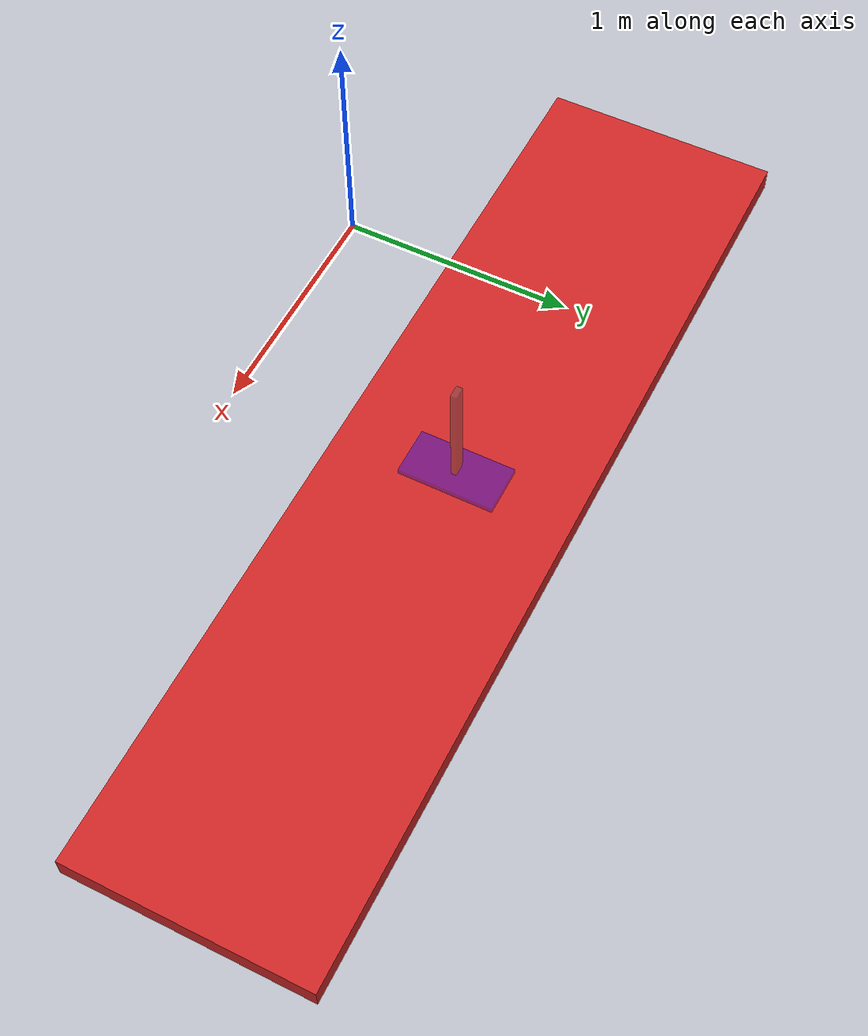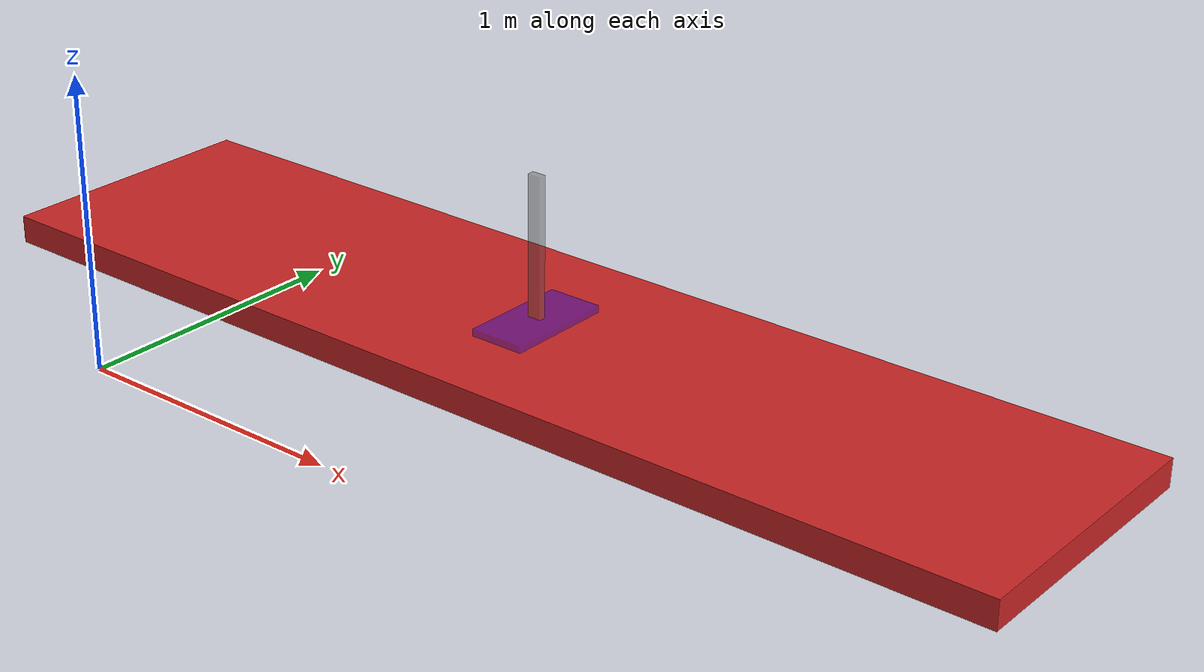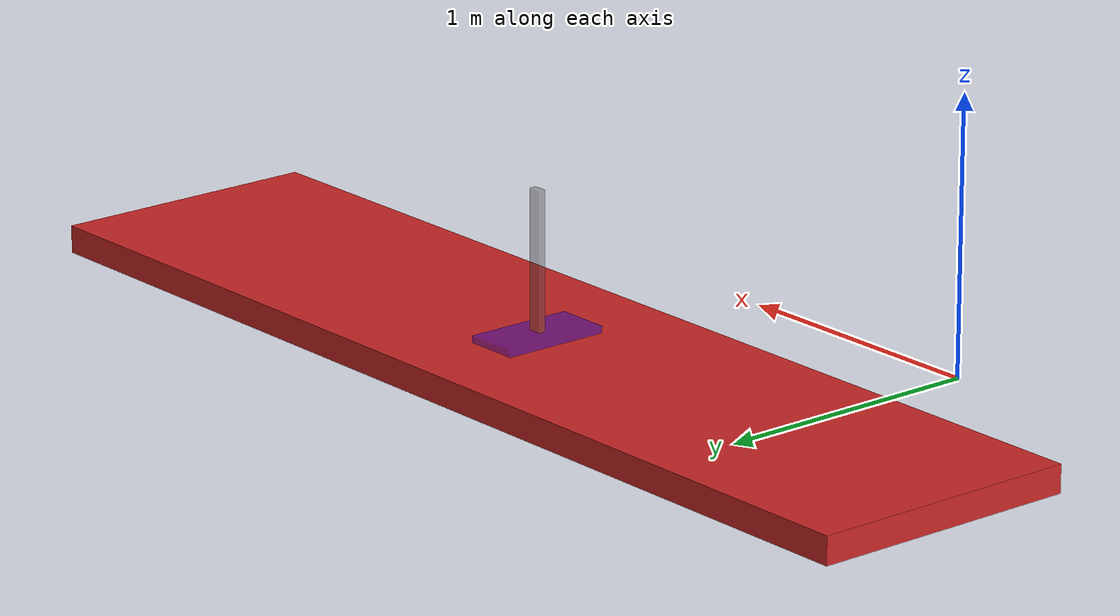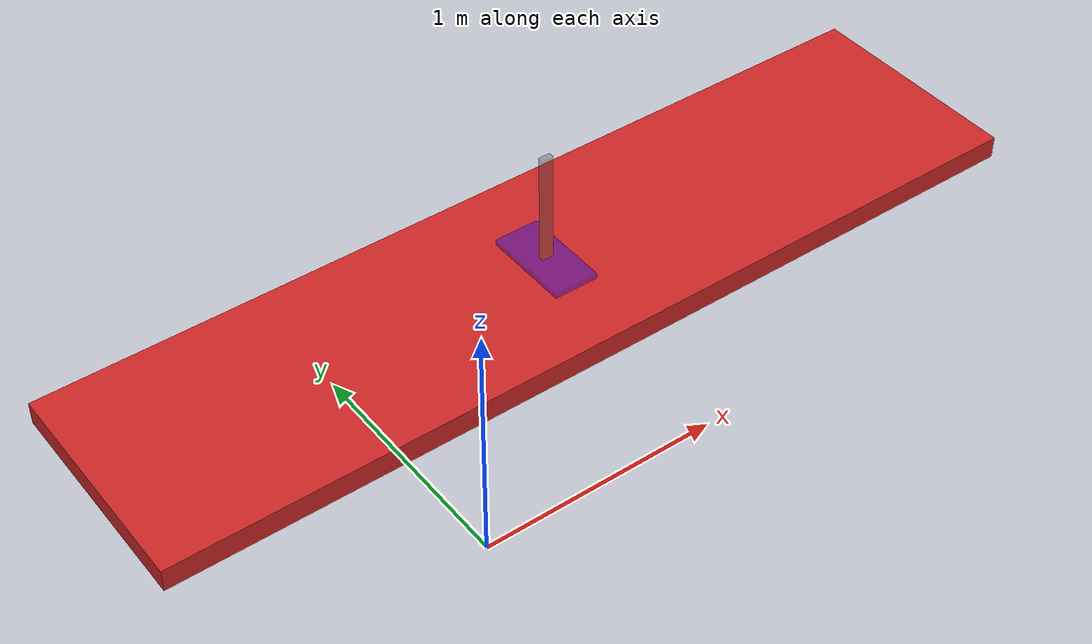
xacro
<?xml version="1.0"?>

    <robot xmlns:xacro="http://www.ros.org/wiki/xacro" name="inverted_pendulum">

       <xacro:include filename="$(find inverted_pendulum_pkg)/urdf/robot_properties.xacro" />

        <!--link definition-->
         <link name="world" />

         <joint name="world_joint" type="fixed">
            <origin xyz="${plate_x_offset} ${plate_y_offset} ${plate_z_offset}" rpy="0.0 0.0 0.0"/>
            <parent link="world"/>
            <child link="link_ref"/>
        </joint>

        <link name="link_ref">
            <inertial>
                <origin xyz="0 0 0" rpy="0 0 0" />
                <mass value="1.0" />
                <xacro:box_inertia_element l_x="${plate_length}" l_y="${plate_width}" l_z="${plate_height}" mass="1.0" />
            </inertial>
            <visual>
                <origin xyz="0 0 0" rpy="0 0 0" />
                <geometry>
                    <box size="${plate_length} ${plate_width} ${plate_height}" />
                </geometry>
            </visual>
            <collision>
                <origin xyz="0 0 0" rpy="0 0 0" />
                <geometry>
                    <box size="${plate_length} ${plate_width} ${plate_height}" />
                </geometry>
            </collision>
        </link>

        <joint name="joint_ref_cart" type="prismatic">
            <origin xyz="0.0 0.0 ${plate_height/2}" rpy="0.0 0.0 0.0" />
            <parent link="link_ref" />
            <child link="link_cart" />
            <axis xyz="1 0 0" />
            <limit lower="-2" upper="2" effort="100" velocity="10" />
        </joint>

        <link name="link_cart">
            <inertial>
                <origin xyz="0 0 ${cart_height/2}" rpy="0 0 0" />
                <mass value="1" />
                <xacro:box_inertia_element l_x="${cart_length}" l_y="${cart_width}" l_z="${cart_height}" mass="${cart_mass}" />
            </inertial>
            <visual>
                <origin xyz="0 0 ${cart_height/2}" rpy="0 0 0" />
                <geometry>
                    <box size="${cart_length} ${cart_width} ${cart_height}" />
                </geometry>
                <material name="Blue">
                    <color rgba="0 0 1 0.4" />
                </material>
            </visual>
            <collision>
                <origin xyz="0 0 ${cart_height/2}" rpy="0 0 0" />
                <geometry>
                    <box size="${cart_length} ${cart_width} ${cart_height}" />
                </geometry>
            </collision>
        </link>

          <joint name="joint_cart_pendulum" type="revolute">
            <parent link="link_cart" />
            <child link="link_pendulum" />
            <origin xyz="0 0 ${cart_height}" rpy="0 0 0" />
            <axis xyz="0 1 0" />
            <limit lower="-${M_PI/2}" upper="${M_PI/2}" effort="100" velocity="10"/>
        </joint>

        <link name="link_pendulum">
            <inertial>
                <origin xyz="0 0 ${pendulum_height/2}" rpy="0 0 0" /> <!--I am adding a small tilt of 5 deg-->
                <mass value="0.2" />
                <xacro:box_inertia_element l_x="${pendulum_length}" l_y="${pendulum_width}" l_z="${pendulum_height}" mass="${pendulum_mass}" />
            </inertial>
            <visual>
                <origin xyz="0 0 ${pendulum_height/2}" rpy="0 0 0" />
                <geometry>
                    <box size="${pendulum_length} ${pendulum_width} ${pendulum_height}" />
                </geometry>
                <material name="Gray">
                    <color rgba="0.33 0.33 0.33 0.4" />
                </material>
            </visual>
            <collision>
                <origin xyz="0 0 ${pendulum_height/2}" rpy="0 0 0" />
                <geometry>
                    <box size="${pendulum_length} ${pendulum_width} ${pendulum_height}" />
                </geometry>
            </collision>
        </link>

        <transmission name="trans_cart">
            <type>transmission_interface/SimpleTransmission</type>
            <joint name="joint_ref_cart">
                <hardwareInterface>hardware_interface/EffortJointInterface</hardwareInterface>
            </joint>
            <actuator name="actuator_cart">
                <mechanicalReduction>1</mechanicalReduction>
                <hardwareInterface>hardware_interface/EffortJointInterface</hardwareInterface>
            </actuator>
        </transmission>

         <transmission name="trans_pendulum">
            <type>transmission_interface/SimpleTransmission</type>
            <joint name="joint_cart_pendulum">
                <hardwareInterface>hardware_interface/EffortJointInterface</hardwareInterface>
            </joint>
            <actuator name="dummy_actuator_pendulum">
                <mechanicalReduction>1</mechanicalReduction>
                <hardwareInterface>hardware_interface/EffortJointInterface</hardwareInterface>
            </actuator>
        </transmission>

    </robot>

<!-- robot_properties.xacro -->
<robot xmlns:xacro="http://www.ros.org/wiki/xacro">

    <xacro:property name="M_PI" value="3.1415926535897932384626" />

    <xacro:property name="plate_mass" value="5.0"/>
    <xacro:property name="plate_length" value="4"/>
    <xacro:property name="plate_width" value="1"/>
    <xacro:property name="plate_height" value="0.1" />
    <xacro:property name="plate_x_offset" value="1"/>
    <xacro:property name="plate_y_offset" value="1"/>
    <xacro:property name="plate_z_offset" value="${plate_height/2}"/>

    <xacro:property name="pendulum_mass" value="0.5" />
    <xacro:property name="pendulum_length" value="0.05" />
    <xacro:property name="pendulum_width" value="0.025" />
    <xacro:property name="pendulum_height" value="0.5" />

    <xacro:property name="cart_mass" value="2.0" />
    <xacro:property name="cart_length" value="0.2" />
    <xacro:property name="cart_width" value="0.4" />
    <xacro:property name="cart_height" value="0.025" />

        <!--COMMENT: Defining a macro to define the inertai element-->
        <xacro:macro name="box_inertia_element" params="l_x l_y l_z mass">
        <inertia ixx="${mass/12 * (l_y*l_y + l_z*l_z)}" ixy="0" ixz="0"
                    iyy="${mass/12 * (l_x*l_x + l_z*l_z)}" iyz="0" izz="${mass/12 * (l_x*l_x + l_y*l_y)}" />
    </xacro:macro>

    <gazebo reference="link_ref">
        <material>Gazebo/Red</material>
    </gazebo>

    <gazebo reference="link_cart">
        <material>Gazebo/Blue</material>
    </gazebo>

    <gazebo reference="link_pendulum">
        <material>Gazebo/Gray</material>
    </gazebo>

    <gazebo>
        <plugin name="gazebo_ros_control" filename="libgazebo_ros_control.so">
        <robotNamespace>/inverted_pendulum</robotNamespace>
        </plugin>
    </gazebo>

</robot>
